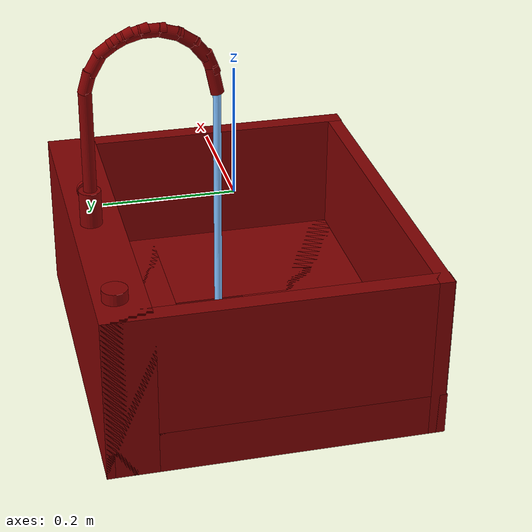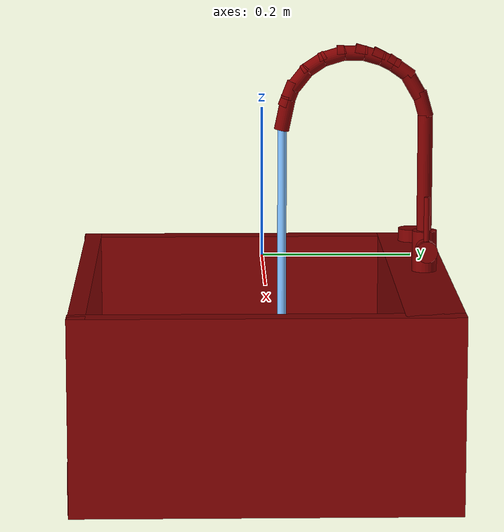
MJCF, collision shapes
<mujoco model="model">
  <compiler angle="radian"/>
  <asset>
    <mesh file="visuals/handle.obj" name="handle_vis"/>
    <mesh file="visuals/Body001.obj" name="Body001_vis"/>
    <mesh file="visuals/Funnel001.obj" name="Funnel001_vis"/>
    <mesh file="visuals/spout.obj" name="spout_vis"/>
    <texture file="visuals/T_BC001.png" name="Body001_material" type="2d"/>
    <material name="Body001_material" rgba="1 1 1 1.0" texture="Body001_material" shininess="0.141421377658844" specular="0.3103448502657381"/>
    <texture file="visuals/T_BC001.png" name="handle_material" type="2d"/>
    <material name="handle_material" rgba="1 1 1 1.0" texture="handle_material" shininess="0.141421377658844" specular="0.3103448502657381"/>
    <texture file="visuals/T_BC001.png" name="Funnel001_material" type="2d"/>
    <material name="Funnel001_material" rgba="1 1 1 1.0" texture="Funnel001_material" shininess="0.141421377658844" specular="0.3103448502657381"/>
    <texture file="visuals/T_BC001.png" name="spout_material" type="2d"/>
    <material name="spout_material" rgba="1 1 1 1.0" texture="spout_material" shininess="0.141421377658844" specular="0.3103448502657381"/>
  </asset>
  <default>
    <default class="visual">
      <geom conaffinity="0" contype="0" group="1" type="mesh"/>
    </default>
    <default class="collision">
      <geom group="0" rgba="0.5 0 0 0.5"/>
    </default>
    <default class="spawn">
      <geom group="0" rgba="1 1 1 0.5" contype="0" conaffinity="0"/>
      <site group="0" rgba="1 1 1 0.5"/>
    </default>
    <default class="region">
      <geom group="1" conaffinity="0" contype="0" rgba="0 1 0 0"/>
    </default>
  </default>
  <worldbody>
    <body>
      <body name="object">
        <geom mesh="Body001_vis" type="mesh" solimp="0.998 0.998 0.001" solref="0.001 1" density="100" friction="0.95 0.3 0.1" class="visual" material="Body001_material"/>
        <geom class="collision" type="box" pos="0.0004361170285847038 0.2123851329088211 -0.15302921831607819" size="0.2912743091583252 0.03833097219467163 0.12881487607955933" quat="1.0 0.0 0.0 0.0"/>
        <geom class="collision" type="box" pos="-0.2768246531486511 0.00023259222507476807 -0.15302921831607819" size="0.014013539999723434 0.25048351287841797 0.12881487607955933" quat="1.0 0.0 0.0 0.0"/>
        <geom class="collision" type="box" pos="-0.17628233134746552 -0.006911349017173052 -0.24843457341194153" size="0.11455585807561874 0.2449672371149063 0.03340951353311539" quat="1.0 0.0 0.0 0.0"/>
        <geom class="collision" type="box" pos="0.2778264582157135 0.00023259222507476807 -0.15302921831607819" size="0.014013539999723434 0.25048351287841797 0.12881487607955933" quat="1.0 0.0 0.0 0.0"/>
        <geom class="collision" type="box" pos="0.0004361170285847038 -0.23778802156448364 -0.15302921831607819" size="0.2912743091583252 0.011451894417405128 0.12881487607955933" quat="1.0 0.0 0.0 0.0"/>
        <geom class="collision" type="box" pos="0.00947922095656395 -0.13789765536785126 -0.24843457341194153" size="0.264898419380188 0.11398094147443771 0.03340951353311539" quat="1.0 0.0 0.0 0.0"/>
        <geom class="collision" type="box" pos="0.1598217934370041 -0.006911349017173052 -0.24843457341194153" size="0.11455585807561874 0.2449672371149063 0.03340951353311539" quat="1.0 0.0 0.0 0.0"/>
        <geom class="collision" type="box" pos="0.00947922095656395 0.13114690780639648 -0.24843457341194153" size="0.264898419380188 0.045668892562389374 0.03340951353311539" quat="1.0 0.0 0.0 0.0"/>
        <geom class="collision" type="box" pos="0.00947922095656395 0.030766069889068604 -0.2589940130710602" size="0.264898419380188 0.05664733797311783 0.022850066423416138" quat="1.0 0.0 0.0 0.0"/>
        <geom class="collision" type="cylinder" pos="-0.23102819919586182 0.21956892311573029 -0.015700601041316986" size="0.018706005066633224 0.009212618693709373" quat="1.0 0.0 0.0 0.0"/>
        <geom class="collision" type="cylinder" pos="-0.008521336130797863 0.22017937898635864 0.003657592460513115" size="0.016683461144566536 0.02757469192147255" quat="0.7071068286895752 0.0 0.0 0.7071067690849304"/>
        <geom class="collision" type="cylinder" pos="0.012675931677222252 0.2198953628540039 0.009904640726745129" size="0.012313892133533955 0.013861095532774925" quat="0.49999770522117615 0.5000000596046448 0.5000022649765015 0.4999999403953552"/>
        <body name="handle">
          <joint axis="1.0 0.0 0.0" pos="0.026260405778884888 0.21996662020683289 0.010362421162426472" limited="true" name="handle_joint_hinge_0" type="hinge" range="-0.7853981633974483 0.7853981633974483" damping="1" frictionloss="1" armature=".01" stiffness="0.05"/>
          <joint axis="0.0 1.0 0.0" pos="0.026260405778884888 0.21996662020683289 0.010362421162426472" limited="true" name="handle_joint_hinge_1" type="hinge" range="0.0 0.2617993877991494" damping="1" frictionloss="1" armature=".01" stiffness="0.05"/>
          <geom mesh="handle_vis" type="mesh" solimp="0.998 0.998 0.001" solref="0.001 1" density="100" friction="0.95 0.3 0.1" class="visual" material="handle_material"/>
          <geom class="collision" type="cylinder" pos="0.03340592980384827 0.21956302225589752 0.05337700992822647" size="0.0040099951438605785 0.030342772603034973" quat="0.7071068286895752 0.0 0.0 0.7071067690849304"/>
          <geom class="collision" type="cylinder" pos="0.03601875528693199 0.2199769765138626 0.00971183367073536" size="0.014395428821444511 0.0036695136222988367" quat="0.49999770522117615 0.5000000596046448 0.5000022649765015 0.4999999403953552"/>
        </body>
        <body name="Funnel001">
          <joint axis="0.0 0.0 1.0" pos="-0.009145500138401985 0.02786899544298649 -0.22682301700115204" limited="true" name="Funnel001_joint" range="0.0 0.1" type="slide" damping="1" frictionloss="1" armature=".01" stiffness="0.05"/>
          <geom mesh="Funnel001_vis" type="mesh" solimp="0.998 0.998 0.001" solref="0.001 1" density="100" friction="0.95 0.3 0.1" class="visual" material="Funnel001_material"/>
          <geom class="collision" type="cylinder" pos="-0.009288927540183067 0.028217310085892677 -0.23071512579917908" size="0.03858840838074684 0.0014626639895141125" quat="1.0 0.0 0.0 0.0"/>
          <geom class="collision" type="cylinder" pos="-0.009020810015499592 0.027589844539761543 -0.2263965755701065" size="0.009702772833406925 0.002236995380371809" quat="1.0 0.0 0.0 0.0"/>
          <geom class="collision" type="box" pos="-0.009514469653367996 -0.013568460941314697 -0.22389210760593414" size="0.007504936307668686 0.0063612330704927444 0.0054296813905239105" quat="1.0 0.0 0.0 0.0"/>
          <geom class="collision" type="box" pos="0.003389945952221751 -0.011668737046420574 -0.22389210760593414" size="0.007504936307668686 0.006361232604831457 0.0054296813905239105" quat="0.9889285564422607 0.0 0.0 0.1483922302722931"/>
          <geom class="collision" type="box" pos="0.015097168274223804 -0.0059336102567613125 -0.22389210760593414" size="0.007504936773329973 0.006361233536154032 0.0054296813905239105" quat="0.9506728649139404 0.0 0.0 0.31019535660743713"/>
          <geom class="collision" type="box" pos="0.024593353271484375 0.003409360069781542 -0.22389210760593414" size="0.007504935842007399 0.0063612330704927444 0.0054296813905239105" quat="0.9016807675361633 0.0 0.0 0.4324023127555847"/>
          <geom class="collision" type="box" pos="0.030434563755989075 0.014565115794539452 -0.22389210760593414" size="0.007504936307668686 0.0063612330704927444 0.0054296813905239105" quat="0.8065516948699951 0.0 0.0 0.5911635756492615"/>
          <geom class="collision" type="box" pos="0.03296256437897682 0.027779659256339073 -0.22389210760593414" size="0.007504936307668686 0.006361233536154032 0.0054296813905239105" quat="0.7310456037521362 0.0 0.0 0.6823286414146423"/>
          <geom class="collision" type="box" pos="0.031169984489679337 0.040120892226696014 -0.22389210760593414" size="0.007504936307668686 0.0063612330704927444 0.0054296813905239105" quat="0.586713433265686 0.0 0.0 0.8097946047782898"/>
          <geom class="collision" type="box" pos="0.024964893236756325 0.05186919867992401 -0.22389210760593414" size="0.007504936307668686 0.006361232604831457 0.0054296813905239105" quat="0.4251607060432434 0.0 0.0 0.9051178693771362"/>
          <geom class="collision" type="box" pos="0.015450422652065754 0.06080453097820282 -0.22389210760593414" size="0.007504936307668686 0.0063612330704927444 0.0054296813905239105" quat="0.2755248546600342 0.0 0.0 0.9612939357757568"/>
          <geom class="collision" type="box" pos="0.0037021192256361246 0.06750603020191193 -0.22389210760593414" size="0.007504936307668686 0.006361233536154032 0.0054296813905239105" quat="0.14602966606616974 0.0 0.0 0.9892802238464355"/>
          <geom class="collision" type="box" pos="-0.009204467758536339 0.06916072219610214 -0.22389210760593414" size="0.007504936307668686 0.0063612330704927444 0.0054296813905239105" quat="-0.022832240909337997 0.0 0.0 0.9997392892837524"/>
          <geom class="collision" type="box" pos="-0.021780116483569145 0.0672578290104866 -0.22389210760593414" size="0.007504936773329973 0.006361233536154032 0.0054296813905239105" quat="-0.1851990967988968 0.0 0.0 0.9827010035514832"/>
          <geom class="collision" type="box" pos="-0.03526584431529045 0.060556329786777496 -0.22389210760593414" size="0.007504935842007399 0.006361232604831457 0.0054296813905239105" quat="-0.3314373791217804 0.0 0.0 0.943477213382721"/>
          <geom class="collision" type="box" pos="-0.04494578391313553 0.05013177543878555 -0.22389210760593414" size="0.007504936307668686 0.006361233536154032 0.0054296813905239105" quat="-0.4811118245124817 0.0 0.0 0.8766592144966125"/>
          <geom class="collision" type="box" pos="-0.04999259114265442 0.03796979784965515 -0.22389210760593414" size="0.007504936307668686 0.0063612330704927444 0.0054296813905239105" quat="-0.606969952583313 0.0 0.0 0.7947247624397278"/>
          <geom class="collision" type="box" pos="-0.05159212648868561 0.024442700669169426 -0.22389210760593414" size="0.007504935842007399 0.0063612330704927444 0.0054296813905239105" quat="-0.7313275337219238 0.0 0.0 0.6820263862609863"/>
          <geom class="collision" type="box" pos="-0.047938019037246704 0.010515724308788776 -0.22389210760593414" size="0.007504935842007399 0.0063612330704927444 0.0054296813905239105" quat="-0.8123117685317993 0.0 0.0 0.5832234621047974"/>
          <geom class="collision" type="box" pos="-0.04262922331690788 0.0012080922024324536 -0.22389210760593414" size="0.007504936307668686 0.006361233536154032 0.0054296813905239105" quat="-0.8933490514755249 0.0 0.0 0.44936347007751465"/>
          <geom class="collision" type="box" pos="-0.033114753663539886 -0.007065359503030777 -0.22389210760593414" size="0.007504936307668686 0.0063612330704927444 0.0054296813905239105" quat="-0.9493938684463501 0.0 0.0 0.31408795714378357"/>
          <geom class="collision" type="box" pos="-0.02277293987572193 -0.011960484087467194 -0.22389210760593414" size="0.007504936307668686 0.0063612330704927444 0.0054296813905239105" quat="-0.9924213290214539 0.0 0.0 0.12288180738687515"/>
        </body>
        <body name="spout">
          <joint axis="0.0 0.0 1.0" pos="-0.008934499695897102 0.21987931430339813 0.15196599066257477" limited="true" name="spout_joint" range="-0.7853981633974483 0.7853981633974483" type="hinge" damping="1" frictionloss="1" armature=".01" stiffness="0.05"/>
          <site type="cylinder" rgba="0.5 0.75 1 1" size="0.006065879482775927 0.2152324616909027" pos="-0.009099733084440231 0.027332251891493797 -0.03505042940378189" name="water"/>
          <geom mesh="spout_vis" type="mesh" solimp="0.998 0.998 0.001" solref="0.001 1" density="100" friction="0.95 0.3 0.1" class="visual" material="spout_material"/>
          <geom class="collision" type="cylinder" pos="-0.00886296946555376 0.21938465535640717 0.11024174839258194" size="0.010048693045973778 0.0785842090845108" quat="1.0 0.0 0.0 0.0"/>
          <geom class="collision" type="cylinder" pos="-0.00886296946555376 0.20319879055023193 0.22848886251449585" size="0.010048693045973778 0.017451457679271698" quat="0.9656886458396912 0.25970259308815 5.766556629770934e-17 -1.7851537715460202e-24"/>
          <geom class="collision" type="cylinder" pos="-0.00886296946555376 0.18345436453819275 0.25120916962623596" size="0.010048693045973778 0.019898122176527977" quat="0.8884070515632629 0.459056556224823 1.0193105151752095e-16 1.3295278680864922e-23"/>
          <geom class="collision" type="cylinder" pos="-0.00886296946555376 0.14356428384780884 0.2693922221660614" size="0.010048693045973778 0.020374983549118042" quat="0.7983346581459045 0.6022140383720398 1.3371837823062722e-16 1.0411496667633645e-23"/>
          <geom class="collision" type="cylinder" pos="-0.00886296946555376 0.09494275599718094 0.26721125841140747" size="0.010048693045973778 0.018348298966884613" quat="0.5963873863220215 0.8026967644691467 1.782344991760424e-16 -4.541982032717364e-25"/>
          <geom class="collision" type="cylinder" pos="-0.00886296946555376 0.05173811689019203 0.23765726387500763" size="0.010048693045973778 0.017533086240291595" quat="0.33013781905174255 0.9439327120780945 2.0959678078574952e-16 8.835709775219947e-23"/>
          <geom class="collision" type="cylinder" pos="-0.00886296946555376 0.03132658079266548 0.19109773635864258" size="0.010048693045973778 0.023006346076726913" quat="0.10297983139753342 0.9946834444999695 2.2086407922457523e-16 2.1929968316975463e-24"/>
          <geom class="collision" type="cylinder" pos="-0.00886296946555376 0.0715356096625328 0.2561853229999542" size="0.010048693045973778 0.018348298966884613" quat="0.4717880189418793 0.881712019443512 1.9577941024987594e-16 2.2470153838030487e-23"/>
          <geom class="collision" type="cylinder" pos="-0.00886296946555376 0.037656936794519424 0.2161986231803894" size="0.010048693045973778 0.017533086240291595" quat="0.1843382567167282 0.9828628897666931 2.1823940205371997e-16 2.4115640377952806e-23"/>
          <geom class="collision" type="cylinder" pos="-0.00886296946555376 0.12046951055526733 0.27161917090415955" size="0.010048693045973778 0.020374981686472893" quat="0.7158699631690979 0.6982336044311523 1.550390048412958e-16 -7.198455945476696e-24"/>
          <geom class="collision" type="cylinder" pos="-0.00886296946555376 0.1646672785282135 0.2623564898967743" size="0.010048693045973778 0.019898122176527977" quat="0.8523038625717163 0.5230469703674316 1.1613975789247092e-16 1.8351938614482215e-23"/>
          <geom class="collision" type="cylinder" pos="-0.00886296946555376 0.21559345722198486 0.20255321264266968" size="0.010048693045973778 0.017451457679271698" quat="0.9905076622962952 0.13745738565921783 3.052168081889604e-17 -1.780933119184055e-25"/>
        </body>
        <geom class="region" name="reg_main" type="box" pos="-7.450580596923828e-09 -1.4901161193847656e-08 -0.15333902835845947" size="0.28999999165534973 0.24990250170230865 0.12788501381874084"/>
        <geom class="region" name="reg_basin" type="box" pos="-0.0024650096893310547 -0.025816358625888824 -0.12526441924273968" size="0.2623489797115326 0.19807863980531693 0.09292957372963428"/>
      </body>
    </body>
  </worldbody>
  <actuator>
    <motor name="handle_joint_hinge_0_actuator" joint="handle_joint_hinge_0" gear="10"/>
    <motor name="handle_joint_hinge_1_actuator" joint="handle_joint_hinge_1" gear="10"/>
    <motor name="Funnel001_joint_actuator" joint="Funnel001_joint" gear="10"/>
    <motor name="spout_joint_actuator" joint="spout_joint" gear="10"/>
  </actuator>
</mujoco>
